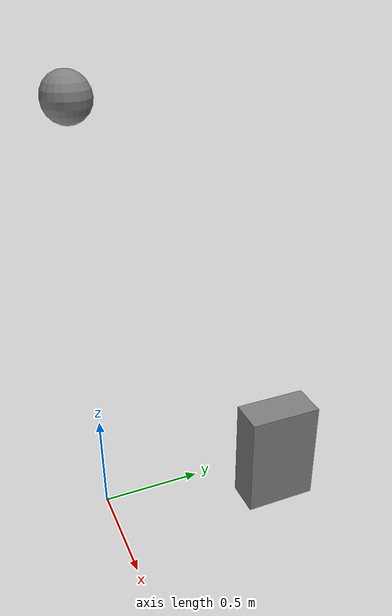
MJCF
<mujoco model="sites">
    <worldbody>
        <site name="worldsite" type="sphere" pos="0 0 0" group="1"/>
        <body name="body">
            <geom name="geom" type="sphere" size="0.1" pos="0 0 2" group="0"/>
            <site name="site" type="box" size="0.1 0.2 0.3" pos="0 1 0" group="0"/>
        </body>
    </worldbody>
</mujoco>
